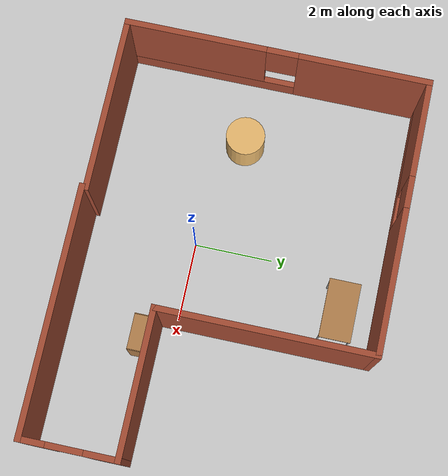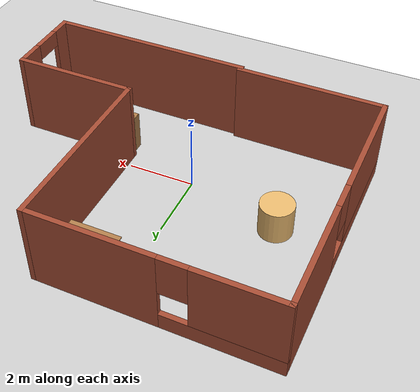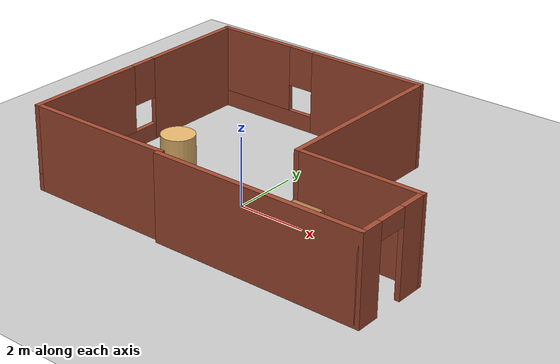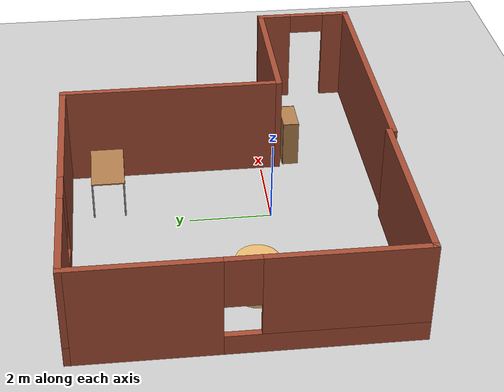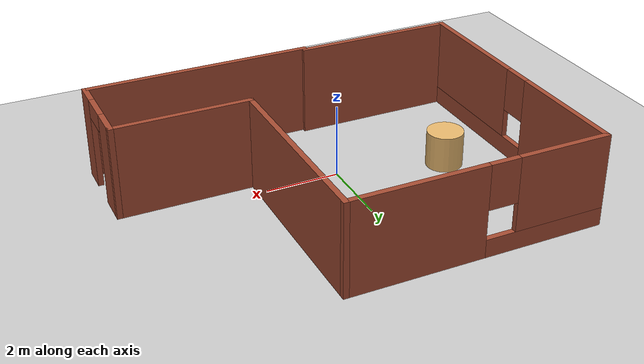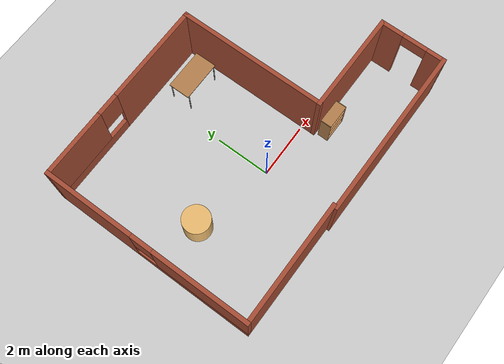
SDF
<sdf version="1.7">
 <world name="default">
  <light name="sun" type="directional">
   <pose>0 0 10 0 -0 0</pose>
   <diffuse>0.8 0.8 0.8 1</diffuse>
   <specular>0.2 0.2 0.2 1</specular>
   <attenuation>
    <range>1000</range>
    <constant>0.9</constant>
    <linear>0.01</linear>
    <quadratic>0.001</quadratic>
   </attenuation>
   <direction>-0.5 0.1 -0.9</direction>
   <spot><inner_angle>0</inner_angle><outer_angle>0</outer_angle><falloff>0</falloff></spot>
  </light>
  <model name="ground_plane">
   <static>1</static>
   <link name="link">
    <collision name="collision">
     <geometry><plane><normal>0 0 1</normal><size>100 100</size></plane></geometry>
     <surface><friction><ode><mu>100</mu><mu2>50</mu2></ode></friction></surface>
    </collision>
    <visual name="visual">
     <cast_shadows>0</cast_shadows>
     <geometry><plane><normal>0 0 1</normal><size>100 100</size></plane></geometry>
     <material>
      <script><uri>file://media/materials/scripts/gazebo.material</uri><name>Gazebo/Grey</name></script>
     </material>
    </visual>
   </link>
  </model>
  <gravity>0 0 -9.8</gravity>
  <magnetic_field>6e-06 2.3e-05 -4.2e-05</magnetic_field>
  <atmosphere type="adiabatic"/>
  <physics type="ode">
   <max_step_size>0.001</max_step_size>
   <real_time_factor>1</real_time_factor>
   <real_time_update_rate>1000</real_time_update_rate>
  </physics>
  <scene><ambient>0.4 0.4 0.4 1</ambient><background>0.7 0.7 0.7 1</background><shadows>1</shadows></scene>
  <spherical_coordinates>
   <surface_model>EARTH_WGS84</surface_model>
   <latitude_deg>0</latitude_deg>
   <longitude_deg>0</longitude_deg>
   <elevation>0</elevation>
   <heading_deg>0</heading_deg>
  </spherical_coordinates>
  <model name="Untitled">
   <pose>0.555 1.06 0 0 -0 0</pose>
   <link name="Wall_0">
    <collision name="Wall_0_Collision">
     <geometry><box><size>6.25 0.15 2.5</size></box></geometry>
     <pose>0 0 1.25 0 -0 0</pose>
    </collision>
    <visual name="Wall_0_Visual">
     <pose>0 0 1.25 0 -0 0</pose>
     <geometry><box><size>6.25 0.15 2.5</size></box></geometry>
     <material>
      <script><uri>file://media/materials/scripts/gazebo.material</uri><name>Gazebo/Bricks</name></script>
      <ambient>1 1 1 1</ambient>
     </material>
     <meta><layer>0</layer></meta>
    </visual>
    <pose>2.175 -3.85 0 0 -0 0</pose>
   </link>
   <link name="Wall_1">
    <pose>5.225 -2.675 0 0 -0 1.5708</pose>
    <visual name="Wall_1_Visual_0">
     <pose>-0.897562 0 1.25 0 -0 0</pose>
     <geometry><box><size>0.704876 0.15 2.5</size></box></geometry>
     <material>
      <script><uri>file://media/materials/scripts/gazebo.material</uri><name>Gazebo/Bricks</name></script>
      <ambient>1 1 1 1</ambient>
     </material>
     <meta><layer>0</layer></meta>
    </visual>
    <collision name="Wall_1_Collision_0">
     <geometry><box><size>0.704876 0.15 2.5</size></box></geometry>
     <pose>-0.897562 0 1.25 0 -0 0</pose>
    </collision>
    <visual name="Wall_1_Visual_1">
     <pose>0.802438 0 1.25 0 -0 0</pose>
     <geometry><box><size>0.895124 0.15 2.5</size></box></geometry>
     <material>
      <script><uri>file://media/materials/scripts/gazebo.material</uri><name>Gazebo/Bricks</name></script>
      <ambient>1 1 1 1</ambient>
     </material>
     <meta><layer>0</layer></meta>
    </visual>
    <collision name="Wall_1_Collision_1">
     <geometry><box><size>0.895124 0.15 2.5</size></box></geometry>
     <pose>0.802438 0 1.25 0 -0 0</pose>
    </collision>
    <visual name="Wall_1_Visual_2">
     <pose>-0.095124 0 2.25 0 -0 0</pose>
     <geometry><box><size>0.9 0.15 0.5</size></box></geometry>
     <material>
      <script><uri>file://media/materials/scripts/gazebo.material</uri><name>Gazebo/Bricks</name></script>
      <ambient>1 1 1 1</ambient>
     </material>
     <meta><layer>0</layer></meta>
    </visual>
    <collision name="Wall_1_Collision_2">
     <geometry><box><size>0.9 0.15 0.5</size></box></geometry>
     <pose>-0.095124 0 2.25 0 -0 0</pose>
    </collision>
   </link>
   <link name="Wall_2">
    <collision name="Wall_2_Collision">
     <geometry><box><size>3.75 0.15 2.5</size></box></geometry>
     <pose>0 0 1.25 0 -0 0</pose>
    </collision>
    <visual name="Wall_2_Visual">
     <pose>0 0 1.25 0 -0 0</pose>
     <geometry><box><size>3.75 0.15 2.5</size></box></geometry>
     <material>
      <script><uri>file://media/materials/scripts/gazebo.material</uri><name>Gazebo/Bricks</name></script>
      <ambient>1 1 1 1</ambient>
     </material>
     <meta><layer>0</layer></meta>
    </visual>
    <pose>3.425 -1.5 0 0 -0 3.14159</pose>
   </link>
   <link name="Wall_3">
    <collision name="Wall_3_Collision">
     <geometry><box><size>5.5 0.15 2.5</size></box></geometry>
     <pose>0 0 1.25 0 -0 0</pose>
    </collision>
    <visual name="Wall_3_Visual">
     <pose>0 0 1.25 0 -0 0</pose>
     <geometry><box><size>5.5 0.15 2.5</size></box></geometry>
     <material>
      <script><uri>file://media/materials/scripts/gazebo.material</uri><name>Gazebo/Bricks</name></script>
      <ambient>1 1 1 1</ambient>
     </material>
     <meta><layer>0</layer></meta>
    </visual>
    <pose>1.625 1.175 0 0 -0 1.5708</pose>
   </link>
   <link name="Wall_4">
    <pose>-1.8 3.85 0 0 -0 3.14159</pose>
    <visual name="Wall_4_Visual_0">
     <pose>-1.65542 0 1.25 0 -0 0</pose>
     <geometry><box><size>3.68916 0.15 2.5</size></box></geometry>
     <material>
      <script><uri>file://media/materials/scripts/gazebo.material</uri><name>Gazebo/Bricks</name></script>
      <ambient>1 1 1 1</ambient>
     </material>
     <meta><layer>0</layer></meta>
    </visual>
    <collision name="Wall_4_Collision_0">
     <geometry><box><size>3.68916 0.15 2.5</size></box></geometry>
     <pose>-1.65542 0 1.25 0 -0 0</pose>
    </collision>
    <visual name="Wall_4_Visual_1">
     <pose>1.84458 0 0.25 0 -0 0</pose>
     <geometry><box><size>3.31084 0.15 0.5</size></box></geometry>
     <material>
      <script><uri>file://media/materials/scripts/gazebo.material</uri><name>Gazebo/Bricks</name></script>
      <ambient>1 1 1 1</ambient>
     </material>
     <meta><layer>0</layer></meta>
    </visual>
    <collision name="Wall_4_Collision_1">
     <geometry><box><size>3.31084 0.15 0.5</size></box></geometry>
     <pose>1.84458 0 0.25 0 -0 0</pose>
    </collision>
    <visual name="Wall_4_Visual_2">
     <pose>2.24458 0 1.5 0 -0 0</pose>
     <geometry><box><size>2.51084 0.15 2</size></box></geometry>
     <material>
      <script><uri>file://media/materials/scripts/gazebo.material</uri><name>Gazebo/Bricks</name></script>
      <ambient>1 1 1 1</ambient>
     </material>
     <meta><layer>0</layer></meta>
    </visual>
    <collision name="Wall_4_Collision_2">
     <geometry><box><size>2.51084 0.15 2</size></box></geometry>
     <pose>2.24458 0 1.5 0 -0 0</pose>
    </collision>
    <visual name="Wall_4_Visual_3">
     <pose>0.589162 0 1.9 0 -0 0</pose>
     <geometry><box><size>0.8 0.15 1.2</size></box></geometry>
     <material>
      <script><uri>file://media/materials/scripts/gazebo.material</uri><name>Gazebo/Bricks</name></script>
      <ambient>1 1 1 1</ambient>
     </material>
     <meta><layer>0</layer></meta>
    </visual>
    <collision name="Wall_4_Collision_3">
     <geometry><box><size>0.8 0.15 1.2</size></box></geometry>
     <pose>0.589162 0 1.9 0 -0 0</pose>
    </collision>
   </link>
   <link name="Wall_5">
    <pose>-5.225 0.05 0 0 -0 -1.5708</pose>
    <visual name="Wall_5_Visual_0">
     <pose>-2.19885 0 1.25 0 -0 0</pose>
     <geometry><box><size>3.35229 0.15 2.5</size></box></geometry>
     <material>
      <script><uri>file://media/materials/scripts/gazebo.material</uri><name>Gazebo/Bricks</name></script>
      <ambient>1 1 1 1</ambient>
     </material>
     <meta><layer>0</layer></meta>
    </visual>
    <collision name="Wall_5_Collision_0">
     <geometry><box><size>3.35229 0.15 2.5</size></box></geometry>
     <pose>-2.19885 0 1.25 0 -0 0</pose>
    </collision>
    <visual name="Wall_5_Visual_1">
     <pose>1.67615 0 0.25 0 -0 0</pose>
     <geometry><box><size>4.39771 0.15 0.5</size></box></geometry>
     <material>
      <script><uri>file://media/materials/scripts/gazebo.material</uri><name>Gazebo/Bricks</name></script>
      <ambient>1 1 1 1</ambient>
     </material>
     <meta><layer>0</layer></meta>
    </visual>
    <collision name="Wall_5_Collision_1">
     <geometry><box><size>4.39771 0.15 0.5</size></box></geometry>
     <pose>1.67615 0 0.25 0 -0 0</pose>
    </collision>
    <visual name="Wall_5_Visual_2">
     <pose>2.07615 0 1.5 0 -0 0</pose>
     <geometry><box><size>3.59771 0.15 2</size></box></geometry>
     <material>
      <script><uri>file://media/materials/scripts/gazebo.material</uri><name>Gazebo/Bricks</name></script>
      <ambient>1 1 1 1</ambient>
     </material>
     <meta><layer>0</layer></meta>
    </visual>
    <collision name="Wall_5_Collision_2">
     <geometry><box><size>3.59771 0.15 2</size></box></geometry>
     <pose>2.07615 0 1.5 0 -0 0</pose>
    </collision>
    <visual name="Wall_5_Visual_3">
     <pose>-0.122708 0 1.9 0 -0 0</pose>
     <geometry><box><size>0.8 0.15 1.2</size></box></geometry>
     <material>
      <script><uri>file://media/materials/scripts/gazebo.material</uri><name>Gazebo/Bricks</name></script>
      <ambient>1 1 1 1</ambient>
     </material>
     <meta><layer>0</layer></meta>
    </visual>
    <collision name="Wall_5_Collision_3">
     <geometry><box><size>0.8 0.15 1.2</size></box></geometry>
     <pose>-0.122708 0 1.9 0 -0 0</pose>
    </collision>
   </link>
   <link name="Wall_6">
    <collision name="Wall_6_Collision">
     <geometry><box><size>4.5 0.15 2.5</size></box></geometry>
     <pose>0 0 1.25 0 -0 0</pose>
    </collision>
    <visual name="Wall_6_Visual">
     <pose>0 0 1.25 0 -0 0</pose>
     <geometry><box><size>4.5 0.15 2.5</size></box></geometry>
     <material>
      <script><uri>file://media/materials/scripts/gazebo.material</uri><name>Gazebo/Bricks</name></script>
      <ambient>1 1 1 1</ambient>
     </material>
     <meta><layer>0</layer></meta>
    </visual>
    <pose>-3.05 -3.75 0 0 -0 0</pose>
   </link>
   <static>1</static>
  </model>
  <model name="bookshelf">
   <static>1</static>
   <link name="link">
    <inertial><mass>1</mass></inertial>
    <collision name="back">
     <pose>0 0.005 0.6 0 -0 0</pose>
     <geometry><box><size>0.9 0.01 1.2</size></box></geometry>
    </collision>
    <visual name="visual1">
     <pose>0 0.005 0.6 0 -0 0</pose>
     <geometry><box><size>0.9 0.01 1.2</size></box></geometry>
     <material>
      <script><uri>file://media/materials/scripts/gazebo.material</uri><name>Gazebo/Wood</name></script>
     </material>
    </visual>
    <collision name="left_side">
     <pose>0.45 -0.195 0.6 0 -0 0</pose>
     <geometry><box><size>0.02 0.4 1.2</size></box></geometry>
    </collision>
    <visual name="visual2">
     <pose>0.45 -0.195 0.6 0 -0 0</pose>
     <geometry><box><size>0.02 0.4 1.2</size></box></geometry>
     <material>
      <script><uri>file://media/materials/scripts/gazebo.material</uri><name>Gazebo/Wood</name></script>
     </material>
    </visual>
    <collision name="right_side">
     <pose>-0.45 -0.195 0.6 0 -0 0</pose>
     <geometry><box><size>0.02 0.4 1.2</size></box></geometry>
    </collision>
    <visual name="visual3">
     <pose>-0.45 -0.195 0.6 0 -0 0</pose>
     <geometry><box><size>0.02 0.4 1.2</size></box></geometry>
     <material>
      <script><uri>file://media/materials/scripts/gazebo.material</uri><name>Gazebo/Wood</name></script>
     </material>
    </visual>
    <collision name="bottom">
     <pose>0 -0.195 0.03 0 -0 0</pose>
     <geometry><box><size>0.88 0.4 0.06</size></box></geometry>
    </collision>
    <visual name="visual4">
     <pose>0 -0.195 0.03 0 -0 0</pose>
     <geometry><box><size>0.88 0.4 0.06</size></box></geometry>
     <material>
      <script><uri>file://media/materials/scripts/gazebo.material</uri><name>Gazebo/Wood</name></script>
     </material>
    </visual>
    <collision name="top">
     <pose>0 -0.195 1.19 0 -0 0</pose>
     <geometry><box><size>0.88 0.4 0.02</size></box></geometry>
    </collision>
    <visual name="visual5">
     <pose>0 -0.195 1.19 0 -0 0</pose>
     <geometry><box><size>0.88 0.4 0.02</size></box></geometry>
     <material>
      <script><uri>file://media/materials/scripts/gazebo.material</uri><name>Gazebo/Wood</name></script>
     </material>
    </visual>
    <collision name="low_shelf">
     <pose>0 -0.195 0.43 0 -0 0</pose>
     <geometry><box><size>0.88 0.4 0.02</size></box></geometry>
    </collision>
    <visual name="visual6">
     <pose>0 -0.195 0.43 0 -0 0</pose>
     <geometry><box><size>0.88 0.4 0.02</size></box></geometry>
     <material>
      <script><uri>file://media/materials/scripts/gazebo.material</uri><name>Gazebo/Wood</name></script>
     </material>
    </visual>
    <collision name="high_shelf">
     <pose>0 -0.195 0.8 0 -0 0</pose>
     <geometry><box><size>0.88 0.4 0.02</size></box></geometry>
    </collision>
    <visual name="visual7">
     <pose>0 -0.195 0.8 0 -0 0</pose>
     <geometry><box><size>0.88 0.4 0.02</size></box></geometry>
     <material>
      <script><uri>file://media/materials/scripts/gazebo.material</uri><name>Gazebo/Wood</name></script>
     </material>
    </visual>
   </link>
   <pose>2.67045 -0.602702 0 0 -0 0</pose>
  </model>
  <model name="table">
   <static>1</static>
   <link name="link">
    <collision name="surface">
     <pose>0 0 1 0 -0 0</pose>
     <geometry><box><size>1.5 0.8 0.03</size></box></geometry>
     <surface><friction><ode><mu>0.6</mu><mu2>0.6</mu2></ode></friction></surface>
    </collision>
    <visual name="visual1">
     <pose>0 0 1 0 -0 0</pose>
     <geometry><box><size>1.5 0.8 0.03</size></box></geometry>
     <material>
      <script><uri>file://media/materials/scripts/gazebo.material</uri><name>Gazebo/Wood</name></script>
     </material>
    </visual>
    <collision name="front_left_leg">
     <pose>0.68 0.38 0.5 0 -0 0</pose>
     <geometry><cylinder><radius>0.02</radius><length>1</length></cylinder></geometry>
    </collision>
    <visual name="front_left_leg">
     <pose>0.68 0.38 0.5 0 -0 0</pose>
     <geometry><cylinder><radius>0.02</radius><length>1</length></cylinder></geometry>
     <material>
      <script><uri>file://media/materials/scripts/gazebo.material</uri><name>Gazebo/Grey</name></script>
     </material>
    </visual>
    <collision name="front_right_leg">
     <pose>0.68 -0.38 0.5 0 -0 0</pose>
     <geometry><cylinder><radius>0.02</radius><length>1</length></cylinder></geometry>
    </collision>
    <visual name="front_right_leg">
     <pose>0.68 -0.38 0.5 0 -0 0</pose>
     <geometry><cylinder><radius>0.02</radius><length>1</length></cylinder></geometry>
     <material>
      <script><uri>file://media/materials/scripts/gazebo.material</uri><name>Gazebo/Grey</name></script>
     </material>
    </visual>
    <collision name="back_right_leg">
     <pose>-0.68 -0.38 0.5 0 -0 0</pose>
     <geometry><cylinder><radius>0.02</radius><length>1</length></cylinder></geometry>
    </collision>
    <visual name="back_right_leg">
     <pose>-0.68 -0.38 0.5 0 -0 0</pose>
     <geometry><cylinder><radius>0.02</radius><length>1</length></cylinder></geometry>
     <material>
      <script><uri>file://media/materials/scripts/gazebo.material</uri><name>Gazebo/Grey</name></script>
     </material>
    </visual>
    <collision name="back_left_leg">
     <pose>-0.68 0.38 0.5 0 -0 0</pose>
     <geometry><cylinder><radius>0.02</radius><length>1</length></cylinder></geometry>
    </collision>
    <visual name="back_left_leg">
     <pose>-0.68 0.38 0.5 0 -0 0</pose>
     <geometry><cylinder><radius>0.02</radius><length>1</length></cylinder></geometry>
     <material>
      <script><uri>file://media/materials/scripts/gazebo.material</uri><name>Gazebo/Grey</name></script>
     </material>
    </visual>
   </link>
   <pose>1.06618 3.92051 0 0 -0 0</pose>
  </model>
  <model name="unit_cylinder">
   <link name="link">
    <inertial>
     <mass>1</mass>
     <inertia><ixx>0.145833</ixx><ixy>0</ixy><ixz>0</ixz><iyy>0.145833</iyy><iyz>0</iyz><izz>0.125</izz></inertia>
    </inertial>
    <visual name="visual">
     <geometry><cylinder><radius>0.5</radius><length>1</length></cylinder></geometry>
     <material>
      <script><name>Gazebo/Grey</name><uri>file://media/materials/scripts/gazebo.material</uri></script>
      <shader type="pixel"><normal_map>__default__</normal_map></shader>
      <ambient>0.914 0.725 0.431 1</ambient>
      <diffuse>0.7 0.7 0.7 1</diffuse>
      <specular>0.01 0.01 0.01 1</specular>
      <emissive>0 0 0 1</emissive>
     </material>
    </visual>
    <collision name="collision">
     <geometry><cylinder><radius>0.5</radius><length>1</length></cylinder></geometry>
     <surface>
      <friction>
       <ode><mu>1</mu><mu2>1</mu2><fdir1>0 0 0</fdir1><slip1>0</slip1><slip2>0</slip2></ode>
       <torsional>
        <coefficient>1</coefficient>
        <patch_radius>0</patch_radius>
        <surface_radius>0</surface_radius>
        <use_patch_radius>1</use_patch_radius>
        <ode><slip>0</slip></ode>
       </torsional>
      </friction>
      <bounce><restitution_coefficient>0</restitution_coefficient><threshold>1e+06</threshold></bounce>
      <contact>
       <collide_without_contact>0</collide_without_contact>
       <collide_without_contact_bitmask>1</collide_without_contact_bitmask>
       <collide_bitmask>1</collide_bitmask>
       <ode>
        <soft_cfm>0</soft_cfm>
        <soft_erp>0.2</soft_erp>
        <kp>1e+13</kp>
        <kd>1</kd>
        <max_vel>0.01</max_vel>
        <min_depth>0</min_depth>
       </ode>
       <bullet>
        <split_impulse>1</split_impulse>
        <split_impulse_penetration_threshold>-0.01</split_impulse_penetration_threshold>
        <soft_cfm>0</soft_cfm>
        <soft_erp>0.2</soft_erp>
        <kp>1e+13</kp>
        <kd>1</kd>
       </bullet>
      </contact>
     </surface>
    </collision>
   </link>
   <static>0</static>
   <pose>-2.86572 0.698624 0.499993 3e-06 3e-06 -0.039653</pose>
  </model>
 </world>
</sdf>
